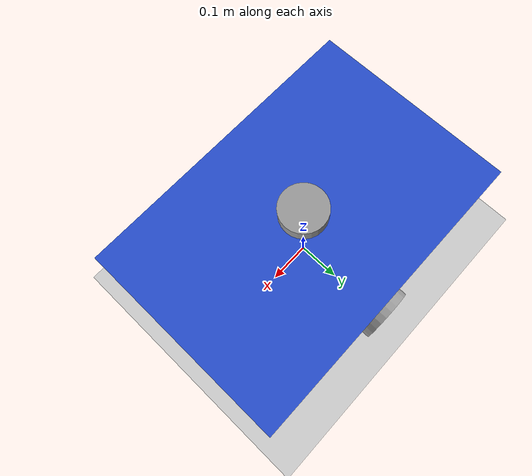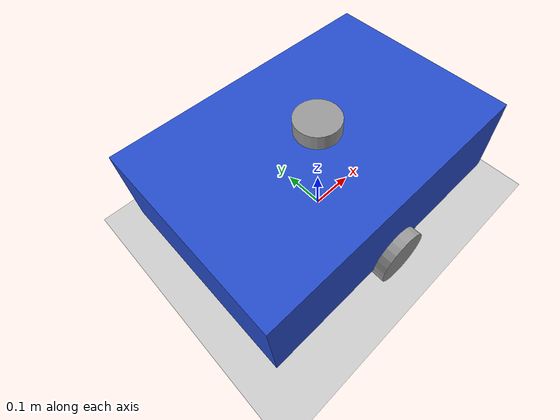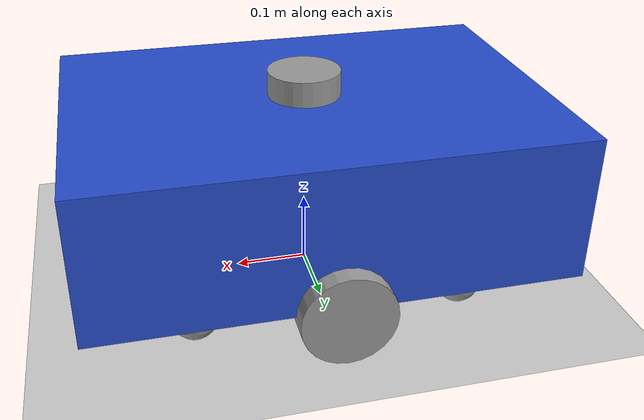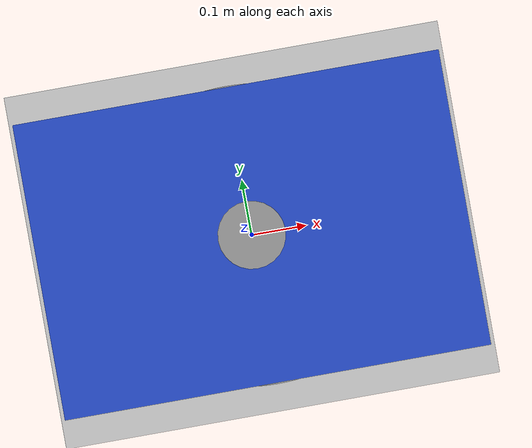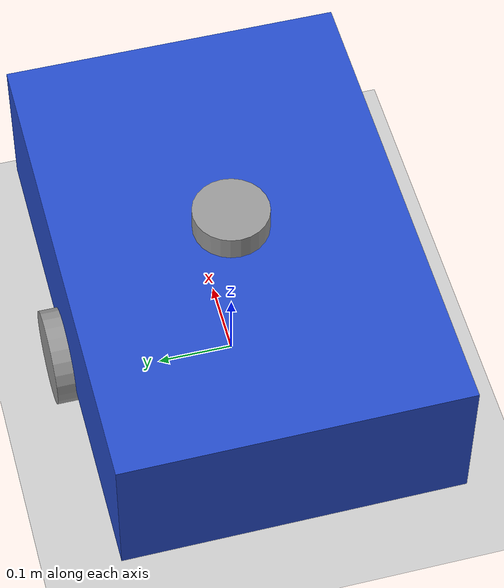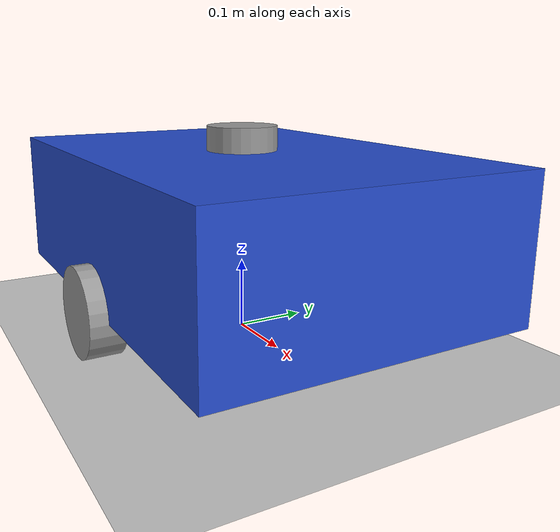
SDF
<sdf version="1.7">
 <world name="default">
  <light name="sun" type="directional">
   <pose>0 0 10 0 -0 0</pose>
   <diffuse>0.8 0.8 0.8 1</diffuse>
   <specular>0.2 0.2 0.2 1</specular>
   <attenuation>
    <range>1000</range>
    <constant>0.9</constant>
    <linear>0.01</linear>
    <quadratic>0.001</quadratic>
   </attenuation>
   <direction>-0.5 0.1 -0.9</direction>
   <spot><inner_angle>0</inner_angle><outer_angle>0</outer_angle><falloff>0</falloff></spot>
  </light>
  <model name="ground_plane">
   <static>1</static>
   <link name="link">
    <collision name="collision">
     <geometry><plane><normal>0 0 1</normal><size>100 100</size></plane></geometry>
     <surface><friction><ode><mu>100</mu><mu2>50</mu2></ode></friction></surface>
    </collision>
    <visual name="visual">
     <cast_shadows>0</cast_shadows>
     <geometry><plane><normal>0 0 1</normal><size>100 100</size></plane></geometry>
     <material>
      <script><uri>file://media/materials/scripts/gazebo.material</uri><name>Gazebo/Grey</name></script>
     </material>
    </visual>
   </link>
  </model>
  <gravity>0 0 -9.8</gravity>
  <magnetic_field>6e-06 2.3e-05 -4.2e-05</magnetic_field>
  <atmosphere type="adiabatic"/>
  <physics type="ode">
   <max_step_size>0.001</max_step_size>
   <real_time_factor>1</real_time_factor>
   <real_time_update_rate>1000</real_time_update_rate>
  </physics>
  <scene><ambient>0.4 0.4 0.4 1</ambient><background>0.7 0.7 0.7 1</background><shadows>1</shadows></scene>
  <audio><device>default</device></audio>
  <spherical_coordinates>
   <surface_model>EARTH_WGS84</surface_model>
   <latitude_deg>0</latitude_deg>
   <longitude_deg>0</longitude_deg>
   <elevation>0</elevation>
   <heading_deg>0</heading_deg>
  </spherical_coordinates>
  <model name="mapper">
   <link name="base_footprint">
    <inertial>
     <pose>0 0 0.249679 0 -0 0</pose>
     <mass>10.9</mass>
     <inertia>
      <ixx>1.71259</ixx>
      <ixy>0</ixy>
      <ixz>2.1684e-19</ixz>
      <iyy>2.26247</iyy>
      <iyz>0</iyz>
      <izz>0.853026</izz>
     </inertia>
    </inertial>
    <collision name="base_footprint_fixed_joint_lump__base_link_collision">
     <pose>0 0 0.163 0 -0 0</pose>
     <geometry><box><size>0.65 0.45 0.2</size></box></geometry>
    </collision>
    <collision name="base_footprint_fixed_joint_lump__caster_wheel_link_1_collision_1">
     <pose>-0.181 -0.15 0.0315 0 -0 0</pose>
     <geometry><sphere><radius>0.0315</radius></sphere></geometry>
     <surface><friction><ode><mu>0.1</mu><mu2>0.1</mu2></ode></friction></surface>
    </collision>
    <collision name="base_footprint_fixed_joint_lump__caster_wheel_link_2_collision_2">
     <pose>-0.181 0.15 0.0315 0 -0 0</pose>
     <geometry><sphere><radius>0.0315</radius></sphere></geometry>
     <surface><friction><ode><mu>0.1</mu><mu2>0.1</mu2></ode></friction></surface>
    </collision>
    <collision name="base_footprint_fixed_joint_lump__caster_wheel_link_3_collision_3">
     <pose>0.181 0.15 0.0315 0 -0 0</pose>
     <geometry><sphere><radius>0.0315</radius></sphere></geometry>
     <surface><friction><ode><mu>0.1</mu><mu2>0.1</mu2></ode></friction></surface>
    </collision>
    <collision name="base_footprint_fixed_joint_lump__caster_wheel_link_4_collision_4">
     <pose>0.181 -0.15 0.0315 0 -0 0</pose>
     <geometry><sphere><radius>0.0315</radius></sphere></geometry>
     <surface><friction><ode><mu>0.1</mu><mu2>0.1</mu2></ode></friction></surface>
    </collision>
    <collision name="base_footprint_fixed_joint_lump__imu_link_collision_5">
     <pose>0 0 0.163 0 -0 0</pose>
     <geometry><box><size>0.1 0.1 0.1</size></box></geometry>
    </collision>
    <collision name="base_footprint_fixed_joint_lump__lidar_link_collision_6">
     <pose>0 0 0.273 0 -0 0</pose>
     <geometry><cylinder><length>0.05</length><radius>0.05</radius></cylinder></geometry>
     <surface><friction><ode><mu>0.1</mu><mu2>0.1</mu2></ode></friction></surface>
    </collision>
    <visual name="base_footprint_fixed_joint_lump__base_link_visual">
     <pose>0 0 0.163 0 -0 0</pose>
     <geometry><box><size>0.65 0.45 0.2</size></box></geometry>
     <material>
      <script><name>Gazebo/Blue</name><uri>file://media/materials/scripts/gazebo.material</uri></script>
     </material>
    </visual>
    <visual name="base_footprint_fixed_joint_lump__caster_wheel_link_1_visual_1">
     <pose>-0.181 -0.15 0.0315 0 -0 0</pose>
     <geometry><sphere><radius>0.0315</radius></sphere></geometry>
     <material>
      <script><name>Gazebo/Grey</name><uri>file://media/materials/scripts/gazebo.material</uri></script>
     </material>
    </visual>
    <visual name="base_footprint_fixed_joint_lump__caster_wheel_link_2_visual_2">
     <pose>-0.181 0.15 0.0315 0 -0 0</pose>
     <geometry><sphere><radius>0.0315</radius></sphere></geometry>
     <material>
      <script><name>Gazebo/Grey</name><uri>file://media/materials/scripts/gazebo.material</uri></script>
     </material>
    </visual>
    <visual name="base_footprint_fixed_joint_lump__caster_wheel_link_3_visual_3">
     <pose>0.181 0.15 0.0315 0 -0 0</pose>
     <geometry><sphere><radius>0.0315</radius></sphere></geometry>
     <material>
      <script><name>Gazebo/Grey</name><uri>file://media/materials/scripts/gazebo.material</uri></script>
     </material>
    </visual>
    <visual name="base_footprint_fixed_joint_lump__caster_wheel_link_4_visual_4">
     <pose>0.181 -0.15 0.0315 0 -0 0</pose>
     <geometry><sphere><radius>0.0315</radius></sphere></geometry>
     <material>
      <script><name>Gazebo/Grey</name><uri>file://media/materials/scripts/gazebo.material</uri></script>
     </material>
    </visual>
    <visual name="base_footprint_fixed_joint_lump__imu_link_visual_5">
     <pose>0 0 0.163 0 -0 0</pose>
     <geometry><box><size>0.05 0.05 0.02</size></box></geometry>
    </visual>
    <visual name="base_footprint_fixed_joint_lump__lidar_link_visual_6">
     <pose>0 0 0.273 0 -0 0</pose>
     <geometry><cylinder><length>0.05</length><radius>0.05</radius></cylinder></geometry>
     <material>
      <script><name>Gazebo/Grey</name><uri>file://media/materials/scripts/gazebo.material</uri></script>
     </material>
    </visual>
    <sensor name="imu_sensor" type="imu">
     <always_on>1</always_on>
     <update_rate>50</update_rate>
     <visualize>1</visualize>
     <topic>imu1</topic>
     <plugin name="imu_plugin" filename="libgazebo_ros_imu_sensor.so">
      <topicName>imu</topicName>
      <bodyName>imu_link</bodyName>
      <updateRateHZ>10.0</updateRateHZ>
      <gaussianNoise>0.0</gaussianNoise>
      <xyzOffset>0 0 0</xyzOffset>
      <rpyOffset>0 0 0</rpyOffset>
      <frameName>imu_link</frameName>
      <initialOrientationAsReference>0</initialOrientationAsReference>
     </plugin>
     <pose>0 0 0.163 0 -0 0</pose>
    </sensor>
    <sensor name="laser" type="ray">
     <visualize>1</visualize>
     <update_rate>10</update_rate>
     <ray>
      <scan>
       <horizontal>
        <samples>360</samples>
        <min_angle>-3.14</min_angle>
        <max_angle>3.14</max_angle>
        <resolution>1</resolution>
       </horizontal>
       <vertical><samples>1</samples><min_angle>0</min_angle><max_angle>0</max_angle></vertical>
      </scan>
      <range><min>0.3</min><max>12</max></range>
     </ray>
     <plugin name="laser_controller" filename="libgazebo_ros_ray_sensor.so">
      <ros><argument>~/out:=scan</argument></ros>
      <output_type>sensor_msgs/LaserScan</output_type>
      <frame_name>lidar_link</frame_name>
     </plugin>
     <pose>0 0 0.273 0 -0 0</pose>
    </sensor>
   </link>
   <joint name="base_left_wheel_joint" type="revolute">
    <pose relative_to="base_footprint">0 0.225 0.063 0 -0 0</pose>
    <parent>base_footprint</parent>
    <child>left_wheel_link</child>
    <axis>
     <xyz>0 1 0</xyz>
     <limit><lower>-1e+16</lower><upper>1e+16</upper></limit>
     <dynamics><spring_reference>0</spring_reference><spring_stiffness>0</spring_stiffness></dynamics>
    </axis>
   </joint>
   <link name="left_wheel_link">
    <pose relative_to="base_left_wheel_joint">0 0 0 0 -0 0</pose>
    <inertial>
     <pose>0 0 0 1.5708 -0 0</pose>
     <mass>1</mass>
     <inertia>
      <ixx>0.00480233</ixx>
      <ixy>0</ixy>
      <ixz>0</ixz>
      <iyy>0.00480233</iyy>
      <iyz>0</iyz>
      <izz>0.007938</izz>
     </inertia>
    </inertial>
    <collision name="left_wheel_link_collision">
     <pose>0 0 0 1.5708 -0 0</pose>
     <geometry><cylinder><length>0.05</length><radius>0.063</radius></cylinder></geometry>
    </collision>
    <visual name="left_wheel_link_visual">
     <pose>0 0 0 1.5708 -0 0</pose>
     <geometry><cylinder><length>0.05</length><radius>0.063</radius></cylinder></geometry>
     <material>
      <script><name>Gazebo/Grey</name><uri>file://media/materials/scripts/gazebo.material</uri></script>
     </material>
    </visual>
   </link>
   <joint name="base_right_wheel_joint" type="revolute">
    <pose relative_to="base_footprint">0 -0.225 0.063 0 -0 0</pose>
    <parent>base_footprint</parent>
    <child>right_wheel_link</child>
    <axis>
     <xyz>0 1 0</xyz>
     <limit><lower>-1e+16</lower><upper>1e+16</upper></limit>
     <dynamics><spring_reference>0</spring_reference><spring_stiffness>0</spring_stiffness></dynamics>
    </axis>
   </joint>
   <link name="right_wheel_link">
    <pose relative_to="base_right_wheel_joint">0 0 0 0 -0 0</pose>
    <inertial>
     <pose>0 0 0 1.5708 -0 0</pose>
     <mass>1</mass>
     <inertia>
      <ixx>0.00480233</ixx>
      <ixy>0</ixy>
      <ixz>0</ixz>
      <iyy>0.00480233</iyy>
      <iyz>0</iyz>
      <izz>0.007938</izz>
     </inertia>
    </inertial>
    <collision name="right_wheel_link_collision">
     <pose>0 0 0 1.5708 -0 0</pose>
     <geometry><cylinder><length>0.05</length><radius>0.063</radius></cylinder></geometry>
    </collision>
    <visual name="right_wheel_link_visual">
     <pose>0 0 0 1.5708 -0 0</pose>
     <geometry><cylinder><length>0.05</length><radius>0.063</radius></cylinder></geometry>
     <material>
      <script><name>Gazebo/Grey</name><uri>file://media/materials/scripts/gazebo.material</uri></script>
     </material>
    </visual>
   </link>
   <static>0</static>
   <plugin name="diff_drive_controller" filename="libgazebo_ros_diff_drive.so">
    <update_rate>50</update_rate>
    <left_joint>base_left_wheel_joint</left_joint>
    <right_joint>base_right_wheel_joint</right_joint>
    <wheel_separation>0.39</wheel_separation>
    <wheel_diameter>0.127</wheel_diameter>
    <publish_odom>1</publish_odom>
    <publish_odom_tf>1</publish_odom_tf>
    <publish_wheel_tf>1</publish_wheel_tf>
    <odometry_topic>odom</odometry_topic>
    <odometry_frame>odom</odometry_frame>
    <robot_base_frame>base_footprint</robot_base_frame>
    <max_speed>10.0</max_speed>
    <max_turning_speed>2.0</max_turning_speed>
   </plugin>
  </model>
 </world>
</sdf>
